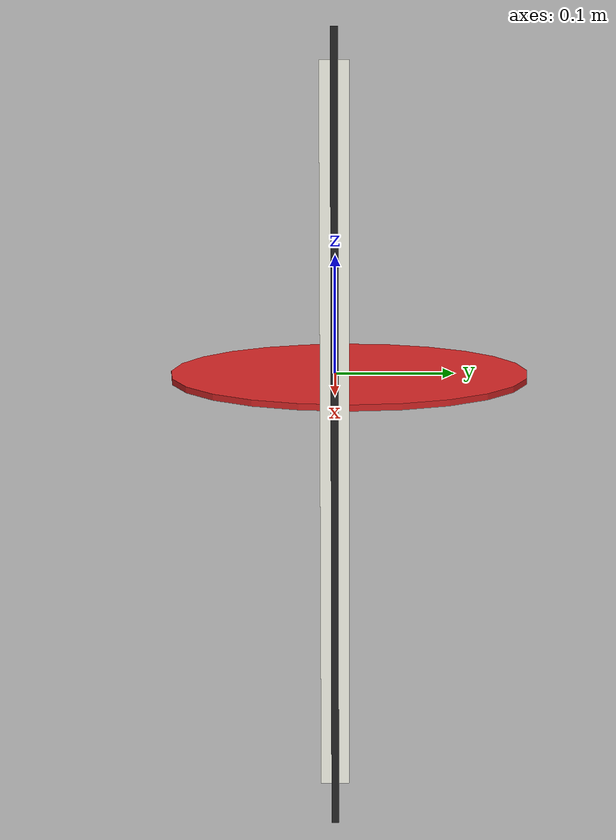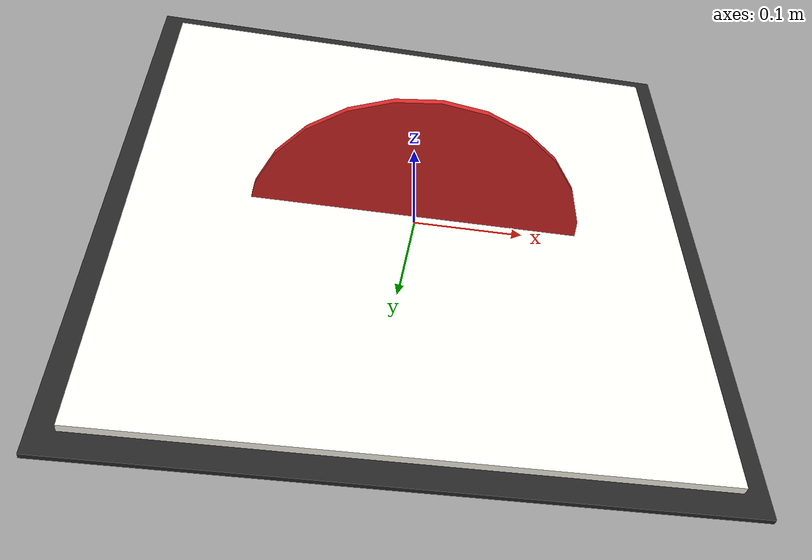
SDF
<?xml version="1.0"?>
<sdf version="1.7">
  <model name="disaster_sign">
    <!-- 灾害标识牌: 挂在墙壁上，用于视觉识别 -->
    <static>true</static>
    <link name="sign_body">
      <!-- 底板 -->
      <visual name="sign_plate">
        <geometry>
          <box>
            <size>0.5 0.02 0.5</size>
          </box>
        </geometry>
        <material>
          <ambient>0.95 0.95 0.9 1.0</ambient>
          <diffuse>1.0 1.0 0.95 1.0</diffuse>
        </material>
      </visual>

      <!-- 边框 -->
      <visual name="sign_border">
        <geometry>
          <box>
            <size>0.54 0.005 0.54</size>
          </box>
        </geometry>
        <material>
          <ambient>0.1 0.1 0.1 1.0</ambient>
          <diffuse>0.15 0.15 0.15 1.0</diffuse>
        </material>
      </visual>

      <!-- 中心图案 (占位圆) — 实际比赛需替换为灾害标识纹理 -->
      <visual name="sign_symbol">
        <pose>0 0.012 0 0 0 0</pose>
        <geometry>
          <cylinder>
            <radius>0.15</radius>
            <length>0.005</length>
          </cylinder>
        </geometry>
        <material>
          <ambient>0.8 0.1 0.1 1.0</ambient>
          <diffuse>0.85 0.15 0.15 1.0</diffuse>
        </material>
      </visual>
    </link>
  </model>
</sdf>
